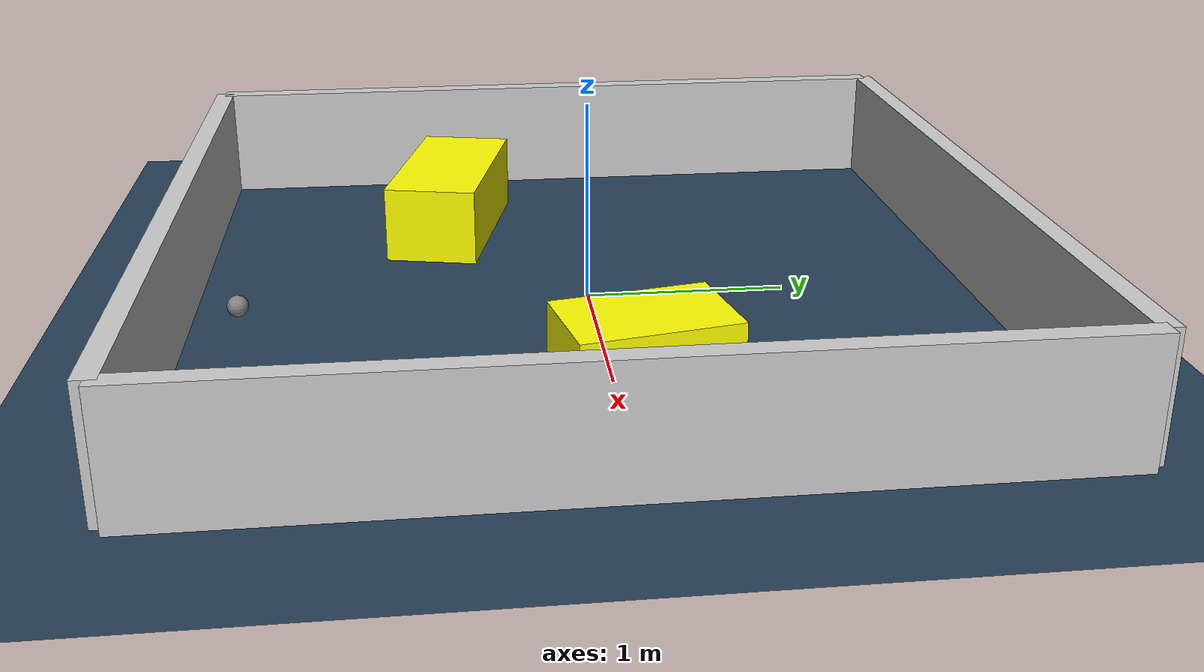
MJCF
<?xml version="1.0" ?>
<mujoco model="generated_environment">
  <option timestep="0.01" integrator="RK4" cone="elliptic"/>
  <default>
    <geom density="1"/>
  </default>
  <asset>
    <texture builtin="gradient" height="3072" rgb1="0.3 0.5 0.7" rgb2="0 0 0" type="skybox" width="512"/>
    <texture builtin="checker" height="300" mark="edge" markrgb="0.8 0.8 0.8" name="groundplane" rgb1="0.2 0.3 0.4" rgb2="0.1 0.2 0.3" type="2d" width="300"/>
    <material name="groundplane" reflectance="0.2" texrepeat="5 5" texture="groundplane" texuniform="true"/>
    <material name="robot" rgba="0.0 1.0 0.0 1"/>
  </asset>
  <worldbody>
    <light dir="0 0 -1" directional="true" pos="0 0 1.5"/>
    <geom condim="4" friction="1.0 0.005 0.001" material="groundplane" name="floor" size="0 0 0.05" type="plane"/>
    <body name="walls">
      <geom name="wall_1" condim="4" pos="-2.0 0.0 0.3" rgba="0.800000011920929 0.800000011920929 0.800000011920929 1.0" size="0.05 2.0 0.3" type="box"/>
      <geom name="wall_2" condim="4" pos="2.0 0.0 0.3" rgba="0.800000011920929 0.800000011920929 0.800000011920929 1.0" size="0.05 2.0 0.3" type="box"/>
      <geom name="wall_3" condim="4" pos="0.0 -2.0 0.3" rgba="0.800000011920929 0.800000011920929 0.800000011920929 1.0" size="2.0 0.05 0.3" type="box"/>
      <geom name="wall_4" condim="4" pos="0.0 2.0 0.3" rgba="0.800000011920929 0.800000011920929 0.800000011920929 1.0" size="2.0 0.05 0.3" type="box"/>
    </body>
    <body name="robot">
      <joint name="joint_x" type="slide" pos="0 0 0" axis="1 0 0"/>
      <joint name="joint_y" type="slide" pos="0 0 0" axis="0 1 0"/>
      <geom name="robot" type="sphere" pos="0.4198983976445505 -1.6832328003642618 0.2" size="0.05" mass="5." friction="1.0 0.005 0.0001" condim="4"/>
      <site name="sensor_ball"/>
    </body>
    <body name="obstacle_1_movable">
      <geom name="obstacle_1_movable" condim="4" pos="-1.0688019046066395 -0.669161383583177 0.2" euler="0 0 76.93025569824364" friction="1.0 0.005 0.001" rgba="1 1 0 1" size="0.24371865640039486 0.5173980249250028 0.2" type="box" mass="0.1"/>
      <joint type="free"/>
    </body>
    <body name="obstacle_2_movable">
      <geom name="obstacle_2_movable" condim="4" pos="1.1637916085057822 0.11463730786868509 0.2" euler="0 0 11.196121673373064" friction="1.0 0.005 0.001" rgba="1 1 0 1" size="0.2385026670265901 0.36878798291584935 0.2" type="box" mass="0.1"/>
      <joint type="free"/>
    </body>
  </worldbody>
  <actuator>
    <motor name="actuator_x" joint="joint_x" gear="1" ctrlrange="-1 1"/>
    <motor name="actuator_y" joint="joint_y" gear="1" ctrlrange="-1 1"/>
  </actuator>
</mujoco>
